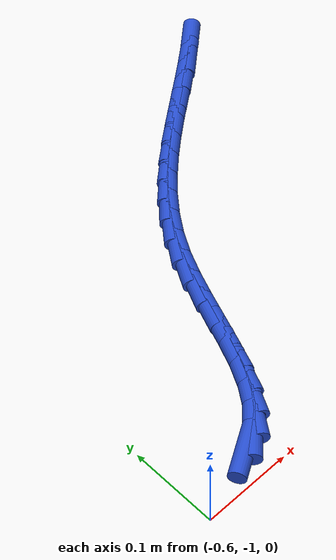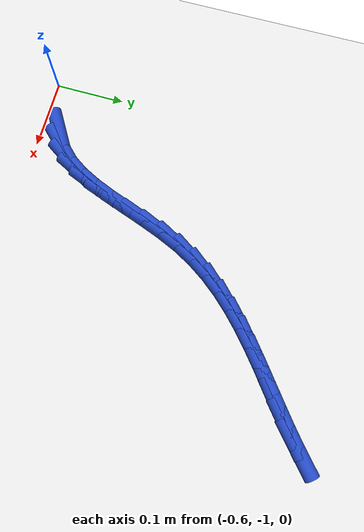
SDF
<sdf version="1.6">
 <world name="default">
  <model name="ground_plane">
   <static>1</static>
   <link name="link">
    <collision name="collision">
     <geometry><plane><normal>0 0 1</normal><size>100 100</size></plane></geometry>
     <surface><friction><ode><mu>100</mu><mu2>50</mu2></ode></friction></surface>
    </collision>
    <visual name="visual">
     <cast_shadows>0</cast_shadows>
     <geometry><plane><normal>0 0 1</normal><size>100 100</size></plane></geometry>
     <material>
      <script><uri>file://media/materials/scripts/gazebo.material</uri><name>Gazebo/WhiteGlow</name></script>
     </material>
    </visual>
   </link>
  </model>
  <model name="line">
   <link name="link_208">
    <pose>-0.519304408887088 -0.9685952915617192 0.01 0 1.57 0.5399454067476636</pose>
    <collision name="collision">
     <geometry><cylinder><radius>0.01</radius><length>0.08</length></cylinder></geometry>
    </collision>
    <visual name="visual">
     <material>
      <script><name>Gazebo/Blue</name><uri>file://media/materials/scripts/gazebo.material</uri></script>
     </material>
     <geometry><cylinder><radius>0.01</radius><length>0.08</length></cylinder></geometry>
    </visual>
   </link>
   <link name="link_209">
    <pose>-0.5000785477455453 -0.9570721675570345 0.01 0 1.57 0.7893041441865197</pose>
    <collision name="collision">
     <geometry><cylinder><radius>0.01</radius><length>0.08</length></cylinder></geometry>
    </collision>
    <visual name="visual">
     <material>
      <script><name>Gazebo/Blue</name><uri>file://media/materials/scripts/gazebo.material</uri></script>
     </material>
     <geometry><cylinder><radius>0.01</radius><length>0.08</length></cylinder></geometry>
    </visual>
   </link>
   <link name="link_210">
    <pose>-0.4838932400603839 -0.9407599244171198 0.01 0 1.57 0.9787506096345917</pose>
    <collision name="collision">
     <geometry><cylinder><radius>0.01</radius><length>0.08</length></cylinder></geometry>
    </collision>
    <visual name="visual">
     <material>
      <script><name>Gazebo/Blue</name><uri>file://media/materials/scripts/gazebo.material</uri></script>
     </material>
     <geometry><cylinder><radius>0.01</radius><length>0.08</length></cylinder></geometry>
    </visual>
   </link>
   <link name="link_211">
    <pose>-0.47019526699120956 -0.9203918737638946 0.01 0 1.57 1.1054925917401093</pose>
    <collision name="collision">
     <geometry><cylinder><radius>0.01</radius><length>0.08</length></cylinder></geometry>
    </collision>
    <visual name="visual">
     <material>
      <script><name>Gazebo/Blue</name><uri>file://media/materials/scripts/gazebo.material</uri></script>
     </material>
     <geometry><cylinder><radius>0.01</radius><length>0.08</length></cylinder></geometry>
    </visual>
   </link>
   <link name="link_212">
    <pose>-0.4583557988852164 -0.8968106522435288 0.01 0 1.57 1.1827032300628897</pose>
    <collision name="collision">
     <geometry><cylinder><radius>0.01</radius><length>0.08</length></cylinder></geometry>
    </collision>
    <visual name="visual">
     <material>
      <script><name>Gazebo/Blue</name><uri>file://media/materials/scripts/gazebo.material</uri></script>
     </material>
     <geometry><cylinder><radius>0.01</radius><length>0.08</length></cylinder></geometry>
    </visual>
   </link>
   <link name="link_213">
    <pose>-0.44774600608959864 -0.8708588965021927 0.01 0 1.57 1.2215000560554143</pose>
    <collision name="collision">
     <geometry><cylinder><radius>0.01</radius><length>0.08</length></cylinder></geometry>
    </collision>
    <visual name="visual">
     <material>
      <script><name>Gazebo/Blue</name><uri>file://media/materials/scripts/gazebo.material</uri></script>
     </material>
     <geometry><cylinder><radius>0.01</radius><length>0.08</length></cylinder></geometry>
    </visual>
   </link>
   <link name="link_214">
    <pose>-0.43773705895155063 -0.8433792431860556 0.01 0 1.57 1.2284642645228323</pose>
    <collision name="collision">
     <geometry><cylinder><radius>0.01</radius><length>0.08</length></cylinder></geometry>
    </collision>
    <visual name="visual">
     <material>
      <script><name>Gazebo/Blue</name><uri>file://media/materials/scripts/gazebo.material</uri></script>
     </material>
     <geometry><cylinder><radius>0.01</radius><length>0.08</length></cylinder></geometry>
    </visual>
   </link>
   <link name="link_215">
    <pose>-0.4277001278182667 -0.8152143289412879 0.01 0 1.57 1.2060628417775958</pose>
    <collision name="collision">
     <geometry><cylinder><radius>0.01</radius><length>0.08</length></cylinder></geometry>
    </collision>
    <visual name="visual">
     <material>
      <script><name>Gazebo/Blue</name><uri>file://media/materials/scripts/gazebo.material</uri></script>
     </material>
     <geometry><cylinder><radius>0.01</radius><length>0.08</length></cylinder></geometry>
    </visual>
   </link>
   <link name="link_216">
    <pose>-0.41700638303694115 -0.7872067904140589 0.01 0 1.57 1.1533129689558375</pose>
    <collision name="collision">
     <geometry><cylinder><radius>0.01</radius><length>0.08</length></cylinder></geometry>
    </collision>
    <visual name="visual">
     <material>
      <script><name>Gazebo/Blue</name><uri>file://media/materials/scripts/gazebo.material</uri></script>
     </material>
     <geometry><cylinder><radius>0.01</radius><length>0.08</length></cylinder></geometry>
    </visual>
   </link>
   <link name="link_217">
    <pose>-0.4050269949547683 -0.7601992642505387 0.01 0 1.57 1.0684813675905909</pose>
    <collision name="collision">
     <geometry><cylinder><radius>0.01</radius><length>0.08</length></cylinder></geometry>
    </collision>
    <visual name="visual">
     <material>
      <script><name>Gazebo/Blue</name><uri>file://media/materials/scripts/gazebo.material</uri></script>
     </material>
     <geometry><cylinder><radius>0.01</radius><length>0.08</length></cylinder></geometry>
    </visual>
   </link>
   <link name="link_218">
    <pose>-0.3911753846692164 -0.7349829819649054 0.01 0 1.57 0.9741255351686033</pose>
    <collision name="collision">
     <geometry><cylinder><radius>0.01</radius><length>0.08</length></cylinder></geometry>
    </collision>
    <visual name="visual">
     <material>
      <script><name>Gazebo/Blue</name><uri>file://media/materials/scripts/gazebo.material</uri></script>
     </material>
     <geometry><cylinder><radius>0.01</radius><length>0.08</length></cylinder></geometry>
    </visual>
   </link>
   <link name="link_219">
    <pose>-0.37537753532428886 -0.7117255572779186 0.01 0 1.57 0.8892955397799083</pose>
    <collision name="collision">
     <geometry><cylinder><radius>0.01</radius><length>0.08</length></cylinder></geometry>
    </collision>
    <visual name="visual">
     <material>
      <script><name>Gazebo/Blue</name><uri>file://media/materials/scripts/gazebo.material</uri></script>
     </material>
     <geometry><cylinder><radius>0.01</radius><length>0.08</length></cylinder></geometry>
    </visual>
   </link>
   <link name="link_220">
    <pose>-0.3579005673877375 -0.6901795530759541 0.01 0 1.57 0.8163523214199572</pose>
    <collision name="collision">
     <geometry><cylinder><radius>0.01</radius><length>0.08</length></cylinder></geometry>
    </collision>
    <visual name="visual">
     <material>
      <script><name>Gazebo/Blue</name><uri>file://media/materials/scripts/gazebo.material</uri></script>
     </material>
     <geometry><cylinder><radius>0.01</radius><length>0.08</length></cylinder></geometry>
    </visual>
   </link>
   <link name="link_221">
    <pose>-0.3390177755344963 -0.6700900202856456 0.01 0 1.57 0.7564290435192635</pose>
    <collision name="collision">
     <geometry><cylinder><radius>0.01</radius><length>0.08</length></cylinder></geometry>
    </collision>
    <visual name="visual">
     <material>
      <script><name>Gazebo/Blue</name><uri>file://media/materials/scripts/gazebo.material</uri></script>
     </material>
     <geometry><cylinder><radius>0.01</radius><length>0.08</length></cylinder></geometry>
    </visual>
   </link>
   <link name="link_222">
    <pose>-0.3190024544394989 -0.6512020098336253 0.01 0 1.57 0.7099768078013318</pose>
    <collision name="collision">
     <geometry><cylinder><radius>0.01</radius><length>0.08</length></cylinder></geometry>
    </collision>
    <visual name="visual">
     <material>
      <script><name>Gazebo/Blue</name><uri>file://media/materials/scripts/gazebo.material</uri></script>
     </material>
     <geometry><cylinder><radius>0.01</radius><length>0.08</length></cylinder></geometry>
    </visual>
   </link>
   <link name="link_223">
    <pose>-0.29812789877767937 -0.633260572646527 0.01 0 1.57 0.6770499498549767</pose>
    <collision name="collision">
     <geometry><cylinder><radius>0.01</radius><length>0.08</length></cylinder></geometry>
    </collision>
    <visual name="visual">
     <material>
      <script><name>Gazebo/Blue</name><uri>file://media/materials/scripts/gazebo.material</uri></script>
     </material>
     <geometry><cylinder><radius>0.01</radius><length>0.08</length></cylinder></geometry>
    </visual>
   </link>
   <link name="link_224">
    <pose>-0.27666740322397126 -0.6160107596509837 0.01 0 1.57 0.6575560358814374</pose>
    <collision name="collision">
     <geometry><cylinder><radius>0.01</radius><length>0.08</length></cylinder></geometry>
    </collision>
    <visual name="visual">
     <material>
      <script><name>Gazebo/Blue</name><uri>file://media/materials/scripts/gazebo.material</uri></script>
     </material>
     <geometry><cylinder><radius>0.01</radius><length>0.08</length></cylinder></geometry>
    </visual>
   </link>
   <link name="link_225">
    <pose>-0.25489426245330865 -0.5991976217736283 0.01 0 1.57 0.651435462204581</pose>
    <collision name="collision">
     <geometry><cylinder><radius>0.01</radius><length>0.08</length></cylinder></geometry>
    </collision>
    <visual name="visual">
     <material>
      <script><name>Gazebo/Blue</name><uri>file://media/materials/scripts/gazebo.material</uri></script>
     </material>
     <geometry><cylinder><radius>0.01</radius><length>0.08</length></cylinder></geometry>
    </visual>
   </link>
   <link name="link_226">
    <pose>-0.23308177114062537 -0.5825662099410944 0.01 0 1.57 0.6587672907155403</pose>
    <collision name="collision">
     <geometry><cylinder><radius>0.01</radius><length>0.08</length></cylinder></geometry>
    </collision>
    <visual name="visual">
     <material>
      <script><name>Gazebo/Blue</name><uri>file://media/materials/scripts/gazebo.material</uri></script>
     </material>
     <geometry><cylinder><radius>0.01</radius><length>0.08</length></cylinder></geometry>
    </visual>
   </link>
   <link name="link_227">
    <pose>-0.21150322396085514 -0.5658615750800149 0.01 0 1.57 0.6798063933062791</pose>
    <collision name="collision">
     <geometry><cylinder><radius>0.01</radius><length>0.08</length></cylinder></geometry>
    </collision>
    <visual name="visual">
     <material>
      <script><name>Gazebo/Blue</name><uri>file://media/materials/scripts/gazebo.material</uri></script>
     </material>
     <geometry><cylinder><radius>0.01</radius><length>0.08</length></cylinder></geometry>
    </visual>
   </link>
   <link name="link_228">
    <pose>-0.19043191558893197 -0.5488287681170232 0.01 0 1.57 0.714950982335902</pose>
    <collision name="collision">
     <geometry><cylinder><radius>0.01</radius><length>0.08</length></cylinder></geometry>
    </collision>
    <visual name="visual">
     <material>
      <script><name>Gazebo/Blue</name><uri>file://media/materials/scripts/gazebo.material</uri></script>
     </material>
     <geometry><cylinder><radius>0.01</radius><length>0.08</length></cylinder></geometry>
    </visual>
   </link>
  </model>
 </world>
</sdf>
